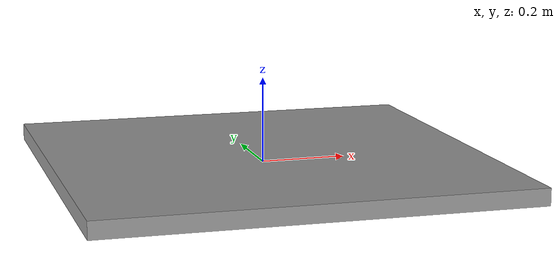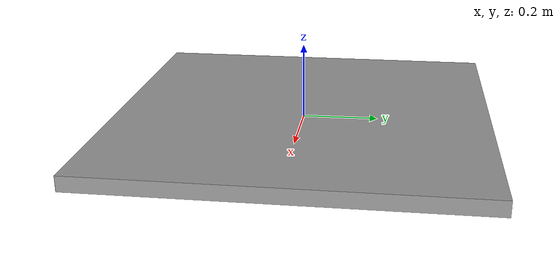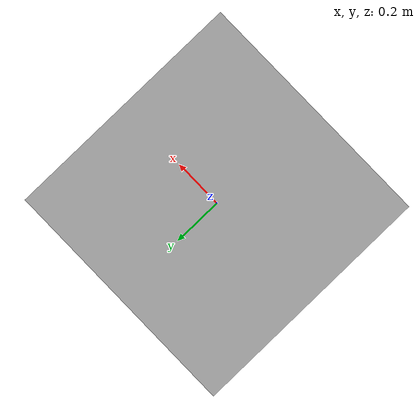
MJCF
<mujoco model="scene">
  <compiler angle="radian" coordinate="local"/>
  <option gravity="0 0 -9.81" integrator="RK4" timestep="0.002"/>

  <asset>
    <texture type="skybox" builtin="gradient" rgb1=".4 .5 .6" rgb2="0 0 0" width="800" height="800"/>
  </asset>

  <worldbody>
    <body name="table" pos="0 0 0">
      <geom type="box" size="0.5 0.5 0.02" rgba="0.6 0.6 0.6 1"/>
    </body>
  </worldbody>

  <visual>
    <map znear="0.001" zfar="10.0"/>
  </visual>
</mujoco>
